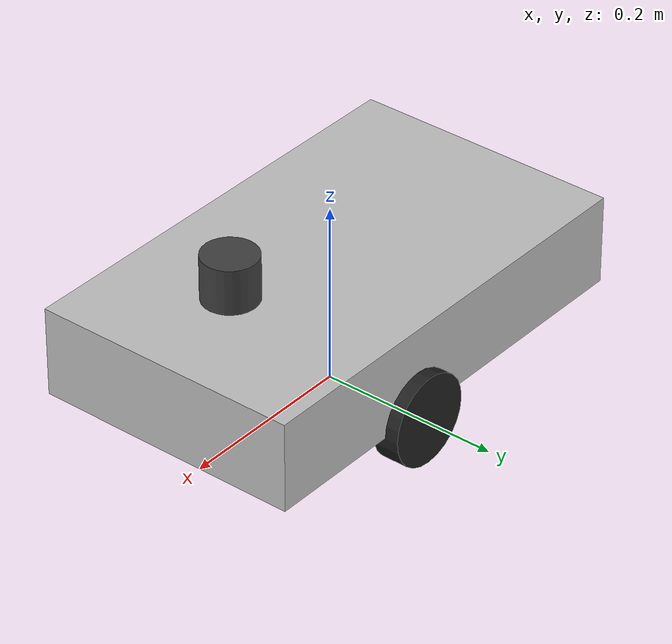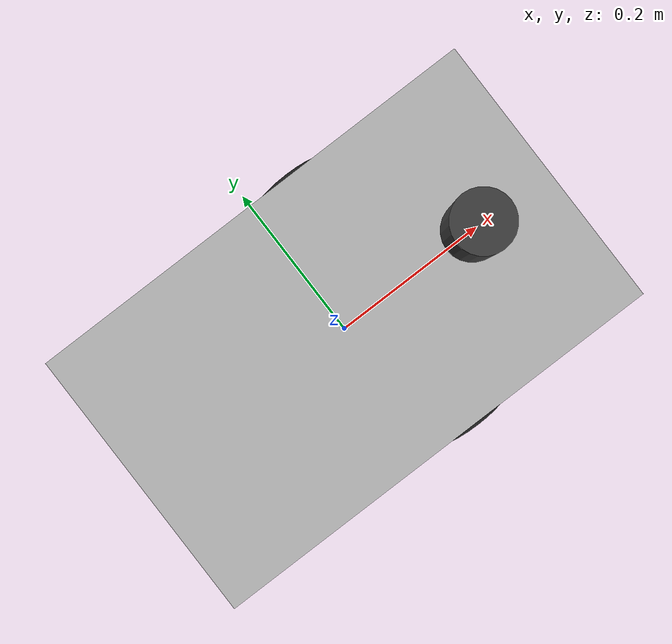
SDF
<sdf version='1.9'>
  <model name='diffbot'>

    <!-- Base link: chassis + lidar lumped (fixed joints collapsed) -->
    <link name='base_link'>
      <inertial>
        <pose>0.005 0 0.10375 0 0 0</pose>
        <mass>5.3</mass>
        <inertia>
          <ixx>0.046</ixx>
          <ixy>0</ixy>
          <ixz>0</ixz>
          <iyy>0.115</iyy>
          <iyz>0</iyz>
          <izz>0.132</izz>
        </inertia>
      </inertial>

      <!-- Chassis collision -->
      <collision name='chassis_collision'>
        <pose>0 0 0.10 0 0 0</pose>
        <geometry>
          <box>
            <size>0.50 0.30 0.10</size>
          </box>
        </geometry>
      </collision>

      <!-- Caster collision -->
      <collision name='caster_collision'>
        <pose>-0.225 0 0.025 0 0 0</pose>
        <geometry>
          <sphere>
            <radius>0.025</radius>
          </sphere>
        </geometry>
        <surface>
          <friction>
            <ode>
              <mu>0.001</mu>
              <mu2>0.001</mu2>
            </ode>
          </friction>
        </surface>
      </collision>

      <!-- Lidar collision -->
      <collision name='lidar_collision'>
        <pose>0.15 0 0.20 0 0 0</pose>
        <geometry>
          <cylinder>
            <length>0.05</length>
            <radius>0.03</radius>
          </cylinder>
        </geometry>
      </collision>

      <!-- Chassis visual -->
      <visual name='chassis_visual'>
        <pose>0 0 0.10 0 0 0</pose>
        <geometry>
          <box>
            <size>0.50 0.30 0.10</size>
          </box>
        </geometry>
        <material>
          <diffuse>0.75 0.75 0.75 1</diffuse>
          <ambient>0.75 0.75 0.75 1</ambient>
        </material>
      </visual>

      <!-- Caster visual -->
      <visual name='caster_visual'>
        <pose>-0.225 0 0.025 0 0 0</pose>
        <geometry>
          <sphere>
            <radius>0.025</radius>
          </sphere>
        </geometry>
        <material>
          <diffuse>0.3 0.3 0.3 1</diffuse>
          <ambient>0.3 0.3 0.3 1</ambient>
        </material>
      </visual>

      <!-- Lidar visual -->
      <visual name='lidar_visual'>
        <pose>0.15 0 0.20 0 0 0</pose>
        <geometry>
          <cylinder>
            <length>0.05</length>
            <radius>0.03</radius>
          </cylinder>
        </geometry>
        <material>
          <diffuse>0.25 0.25 0.25 1</diffuse>
          <ambient>0.25 0.25 0.25 1</ambient>
        </material>
      </visual>

      <!-- Lidar sensor -->
      <sensor name='ouster' type='gpu_lidar'>
        <topic>/diffbot/ouster/points</topic>
        <update_rate>10</update_rate>
        <lidar>
          <scan>
            <horizontal>
              <samples>360</samples>
              <resolution>1</resolution>
              <min_angle>-3.14159</min_angle>
              <max_angle>3.14159</max_angle>
            </horizontal>
            <vertical>
              <samples>16</samples>
              <resolution>1</resolution>
              <min_angle>-0.261799</min_angle>
              <max_angle>0.261799</max_angle>
            </vertical>
          </scan>
          <range>
            <min>0.1</min>
            <max>10</max>
            <resolution>0.01</resolution>
          </range>
          <noise>
            <type>gaussian</type>
            <mean>0.0</mean>
            <stddev>0.015</stddev>
          </noise>
        </lidar>
        <visualize>true</visualize>
        <pose>0.15 0 0.20 0 0 0</pose>
        <alwaysOn>1</alwaysOn>
      </sensor>

      <!-- IMU sensor — collocated with lidar, matches body IMU from go2_statepublisher -->
      <sensor name='imu_sensor' type='imu'>
        <topic>/diffbot/imu</topic>
        <update_rate>100</update_rate>
        <imu>
          <angular_velocity>
            <x><noise type="gaussian"><mean>0.0</mean><stddev>0.002</stddev></noise></x>
            <y><noise type="gaussian"><mean>0.0</mean><stddev>0.002</stddev></noise></y>
            <z><noise type="gaussian"><mean>0.0</mean><stddev>0.002</stddev></noise></z>
          </angular_velocity>
          <linear_acceleration>
            <x><noise type="gaussian"><mean>0.0</mean><stddev>0.04</stddev></noise></x>
            <y><noise type="gaussian"><mean>0.0</mean><stddev>0.04</stddev></noise></y>
            <z><noise type="gaussian"><mean>0.0</mean><stddev>0.04</stddev></noise></z>
          </linear_acceleration>
        </imu>
        <pose>0.15 0 0.20 0 0 0</pose>
        <alwaysOn>1</alwaysOn>
      </sensor>
    </link>

    <!-- Left wheel -->
    <joint name='left_wheel_joint' type='revolute'>
      <pose relative_to='base_link'>0.05 0.15 0.05 0 0 0</pose>
      <parent>base_link</parent>
      <child>left_wheel_link</child>
      <axis>
        <xyz>0 1 0</xyz>
        <limit>
          <lower>-1e16</lower>
          <upper>1e16</upper>
        </limit>
      </axis>
    </joint>
    <link name='left_wheel_link'>
      <pose relative_to='left_wheel_joint'>0 0 0 0 0 0</pose>
      <inertial>
        <mass>0.5</mass>
        <inertia>
          <ixx>0.00034375</ixx>
          <ixy>0</ixy>
          <ixz>0</ixz>
          <iyy>0.000625</iyy>
          <iyz>0</iyz>
          <izz>0.00034375</izz>
        </inertia>
      </inertial>
      <collision name='left_wheel_collision'>
        <pose>0 0 0 1.5707963 0 0</pose>
        <geometry>
          <cylinder>
            <length>0.03</length>
            <radius>0.05</radius>
          </cylinder>
        </geometry>
        <surface>
          <friction>
            <ode>
              <mu>100.0</mu>
              <mu2>100.0</mu2>
            </ode>
          </friction>
        </surface>
      </collision>
      <visual name='left_wheel_visual'>
        <pose>0 0 0 1.5707963 0 0</pose>
        <geometry>
          <cylinder>
            <length>0.03</length>
            <radius>0.05</radius>
          </cylinder>
        </geometry>
        <material>
          <diffuse>0.125 0.125 0.125 1</diffuse>
          <ambient>0.125 0.125 0.125 1</ambient>
        </material>
      </visual>
    </link>

    <!-- Right wheel -->
    <joint name='right_wheel_joint' type='revolute'>
      <pose relative_to='base_link'>0.05 -0.15 0.05 0 0 0</pose>
      <parent>base_link</parent>
      <child>right_wheel_link</child>
      <axis>
        <xyz>0 1 0</xyz>
        <limit>
          <lower>-1e16</lower>
          <upper>1e16</upper>
        </limit>
      </axis>
    </joint>
    <link name='right_wheel_link'>
      <pose relative_to='right_wheel_joint'>0 0 0 0 0 0</pose>
      <inertial>
        <mass>0.5</mass>
        <inertia>
          <ixx>0.00034375</ixx>
          <ixy>0</ixy>
          <ixz>0</ixz>
          <iyy>0.000625</iyy>
          <iyz>0</iyz>
          <izz>0.00034375</izz>
        </inertia>
      </inertial>
      <collision name='right_wheel_collision'>
        <pose>0 0 0 1.5707963 0 0</pose>
        <geometry>
          <cylinder>
            <length>0.03</length>
            <radius>0.05</radius>
          </cylinder>
        </geometry>
        <surface>
          <friction>
            <ode>
              <mu>100.0</mu>
              <mu2>100.0</mu2>
            </ode>
          </friction>
        </surface>
      </collision>
      <visual name='right_wheel_visual'>
        <pose>0 0 0 1.5707963 0 0</pose>
        <geometry>
          <cylinder>
            <length>0.03</length>
            <radius>0.05</radius>
          </cylinder>
        </geometry>
        <material>
          <diffuse>0.125 0.125 0.125 1</diffuse>
          <ambient>0.125 0.125 0.125 1</ambient>
        </material>
      </visual>
    </link>

    <!-- Diff Drive plugin -->
    <plugin name='gz::sim::systems::DiffDrive' filename='ignition-gazebo-diff-drive-system'>
      <left_joint>left_wheel_joint</left_joint>
      <right_joint>right_wheel_joint</right_joint>
      <wheel_separation>0.30</wheel_separation>
      <wheel_radius>0.05</wheel_radius>
      <max_linear_acceleration>3</max_linear_acceleration>
      <min_linear_acceleration>-3</min_linear_acceleration>
      <max_angular_acceleration>5</max_angular_acceleration>
      <min_angular_acceleration>-5</min_angular_acceleration>
      <max_linear_velocity>2</max_linear_velocity>
      <min_linear_velocity>-2</min_linear_velocity>
    </plugin>

    <plugin name='gz::sim::systems::JointStatePublisher' filename='ignition-gazebo-joint-state-publisher-system'/>

    <plugin name='ignition::gazebo::systems::OdometryPublisher' filename='ignition-gazebo-odometry-publisher-system'>
      <dimensions>3</dimensions>
      <odom_frame>odom</odom_frame>
      <robot_base_frame>base_link</robot_base_frame>
      <odom_publish_frequency>50</odom_publish_frequency>
    </plugin>

    <!-- Named frames for RSP compatibility -->
    <frame name='lidar_joint' attached_to='base_link'>
      <pose>0.15 0 0.10 0 0 0</pose>
    </frame>
    <frame name='lidar_link' attached_to='lidar_joint'/>
    <frame name='caster_joint' attached_to='base_link'>
      <pose>-0.225 0 -0.025 0 0 0</pose>
    </frame>
    <frame name='caster_link' attached_to='caster_joint'/>

  </model>
</sdf>
